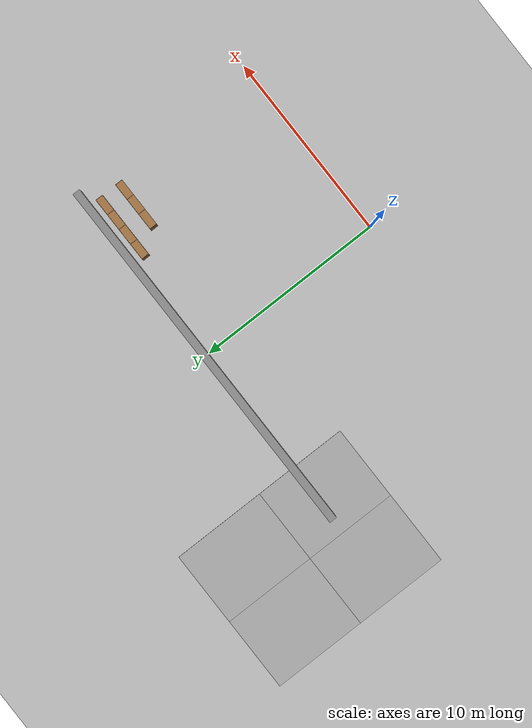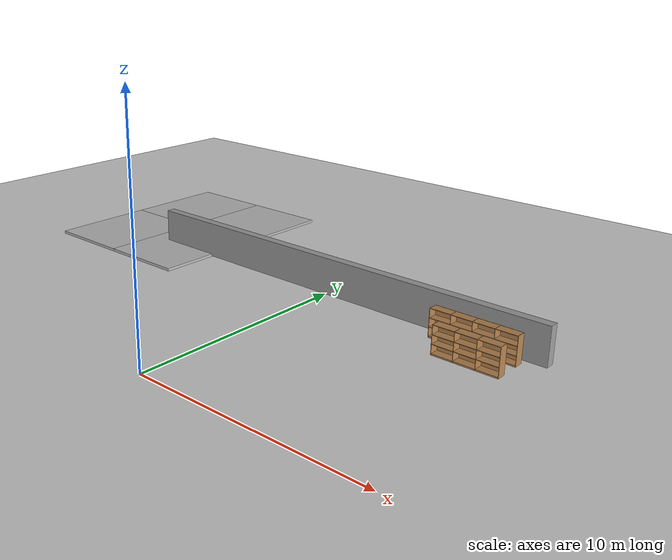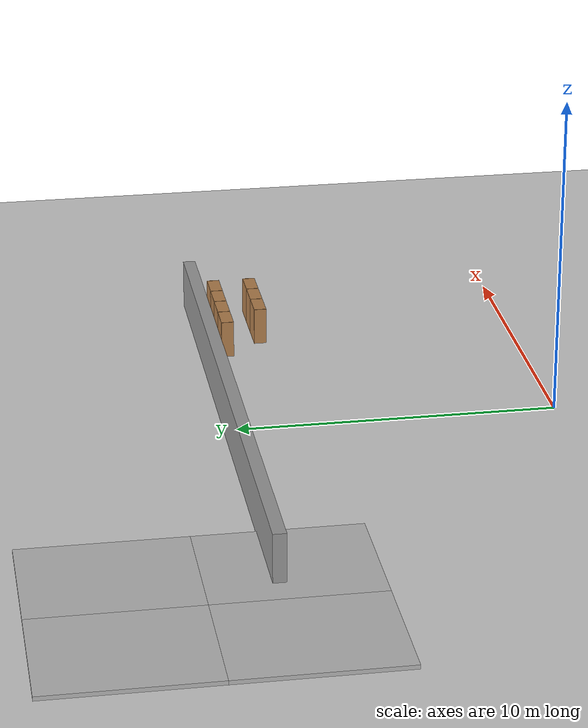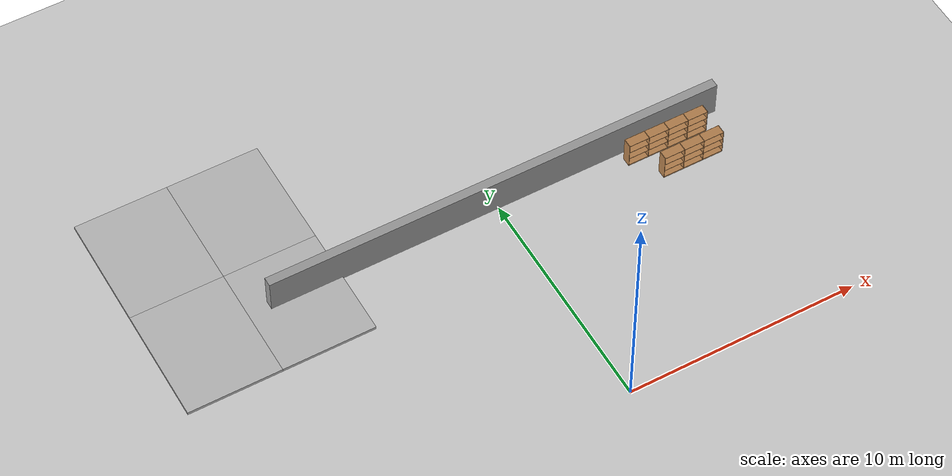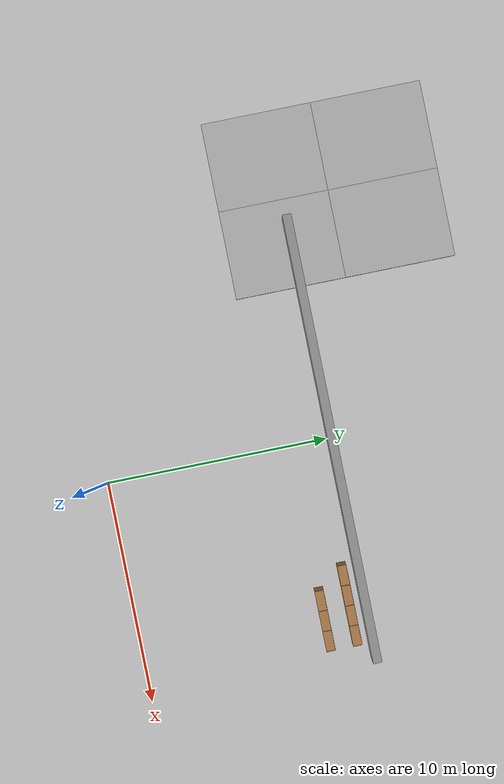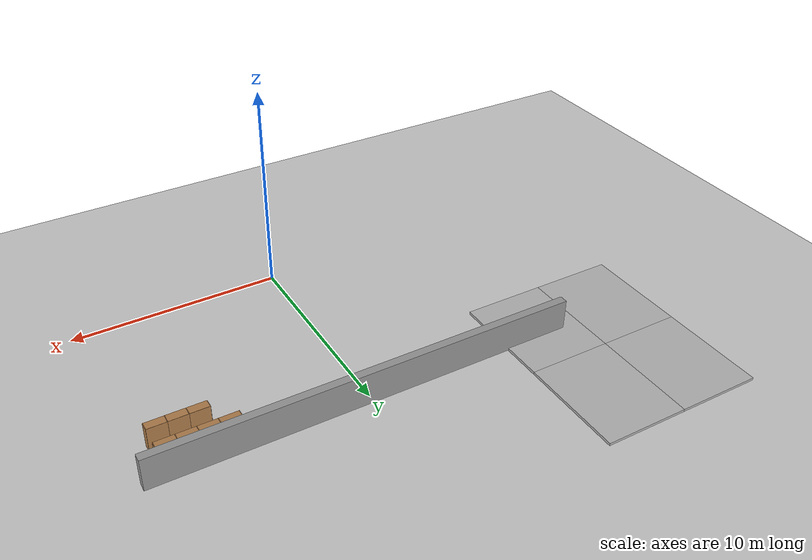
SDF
<sdf version="1.6">
 <world name="default">
  <model name="ground_plane">
   <static>1</static>
   <link name="link">
    <collision name="collision">
     <geometry><plane><normal>0 0 1</normal><size>100 100</size></plane></geometry>
     <surface><friction><ode><mu>100</mu><mu2>50</mu2></ode></friction></surface>
    </collision>
    <visual name="visual">
     <cast_shadows>0</cast_shadows>
     <geometry><plane><normal>0 0 1</normal><size>100 100</size></plane></geometry>
     <material>
      <script><uri>file://media/materials/scripts/gazebo.material</uri><name>Gazebo/Grey</name></script>
     </material>
    </visual>
   </link>
  </model>
  <model name="grey_wall_20">
   <link name="north_wall">
    <inertial>
     <mass>10</mass>
     <inertia><ixx>1</ixx><ixy>0</ixy><ixz>0</ixz><iyy>1</iyy><iyz>0</iyz><izz>1</izz></inertia>
    </inertial>
    <visual name="visual">
     <cast_shadows>0</cast_shadows>
     <geometry><box><size>20 0.4 1.6</size></box></geometry>
     <material>
      <script>
       <uri>model://grey_wall/materials/scripts</uri>
       <uri>model://grey_wall/materials/textures</uri>
       <name>vrc/grey_wall</name>
      </script>
      <ambient>1 1 1 1</ambient>
      <diffuse>1 1 1 1</diffuse>
      <specular>0 0 0 1</specular>
      <emissive>0 0 0 1</emissive>
      <shader type="vertex"><normal_map>__default__</normal_map></shader>
     </material>
    </visual>
    <collision name="collision">
     <geometry><box><size>20 0.4 1.6</size></box></geometry>
     <surface>
      <friction>
       <ode><mu>1</mu><mu2>1</mu2><fdir1>0 0 0</fdir1><slip1>0</slip1><slip2>0</slip2></ode>
       <torsional>
        <coefficient>1</coefficient>
        <patch_radius>0</patch_radius>
        <surface_radius>0</surface_radius>
        <use_patch_radius>1</use_patch_radius>
        <ode><slip>0</slip></ode>
       </torsional>
      </friction>
      <bounce><restitution_coefficient>0</restitution_coefficient><threshold>1e+06</threshold></bounce>
      <contact>
       <collide_without_contact>0</collide_without_contact>
       <collide_without_contact_bitmask>1</collide_without_contact_bitmask>
       <collide_bitmask>1</collide_bitmask>
       <ode>
        <soft_cfm>0</soft_cfm>
        <soft_erp>0.2</soft_erp>
        <kp>1e+13</kp>
        <kd>1</kd>
        <max_vel>0.01</max_vel>
        <min_depth>0</min_depth>
       </ode>
       <bullet>
        <split_impulse>1</split_impulse>
        <split_impulse_penetration_threshold>-0.01</split_impulse_penetration_threshold>
        <soft_cfm>0</soft_cfm>
        <soft_erp>0.2</soft_erp>
        <kp>1e+13</kp>
        <kd>1</kd>
       </bullet>
      </contact>
     </surface>
    </collision>
   </link>
   <static>1</static>
   <pose>0 10.2 0.8 0 -0 0</pose>
  </model>
  <model name="bookshelf">
   <static>1</static>
   <link name="link">
    <inertial><mass>1</mass></inertial>
    <collision name="back">
     <pose>0 0.005 0.6 0 -0 0</pose>
     <geometry><box><size>0.9 0.01 1.2</size></box></geometry>
    </collision>
    <visual name="visual1">
     <pose>0 0.005 0.6 0 -0 0</pose>
     <geometry><box><size>0.9 0.01 1.2</size></box></geometry>
     <material>
      <script><uri>file://media/materials/scripts/gazebo.material</uri><name>Gazebo/Wood</name></script>
     </material>
    </visual>
    <collision name="left_side">
     <pose>0.45 -0.195 0.6 0 -0 0</pose>
     <geometry><box><size>0.02 0.4 1.2</size></box></geometry>
    </collision>
    <visual name="visual2">
     <pose>0.45 -0.195 0.6 0 -0 0</pose>
     <geometry><box><size>0.02 0.4 1.2</size></box></geometry>
     <material>
      <script><uri>file://media/materials/scripts/gazebo.material</uri><name>Gazebo/Wood</name></script>
     </material>
    </visual>
    <collision name="right_side">
     <pose>-0.45 -0.195 0.6 0 -0 0</pose>
     <geometry><box><size>0.02 0.4 1.2</size></box></geometry>
    </collision>
    <visual name="visual3">
     <pose>-0.45 -0.195 0.6 0 -0 0</pose>
     <geometry><box><size>0.02 0.4 1.2</size></box></geometry>
     <material>
      <script><uri>file://media/materials/scripts/gazebo.material</uri><name>Gazebo/Wood</name></script>
     </material>
    </visual>
    <collision name="bottom">
     <pose>0 -0.195 0.03 0 -0 0</pose>
     <geometry><box><size>0.88 0.4 0.06</size></box></geometry>
    </collision>
    <visual name="visual4">
     <pose>0 -0.195 0.03 0 -0 0</pose>
     <geometry><box><size>0.88 0.4 0.06</size></box></geometry>
     <material>
      <script><uri>file://media/materials/scripts/gazebo.material</uri><name>Gazebo/Wood</name></script>
     </material>
    </visual>
    <collision name="top">
     <pose>0 -0.195 1.19 0 -0 0</pose>
     <geometry><box><size>0.88 0.4 0.02</size></box></geometry>
    </collision>
    <visual name="visual5">
     <pose>0 -0.195 1.19 0 -0 0</pose>
     <geometry><box><size>0.88 0.4 0.02</size></box></geometry>
     <material>
      <script><uri>file://media/materials/scripts/gazebo.material</uri><name>Gazebo/Wood</name></script>
     </material>
    </visual>
    <collision name="low_shelf">
     <pose>0 -0.195 0.43 0 -0 0</pose>
     <geometry><box><size>0.88 0.4 0.02</size></box></geometry>
    </collision>
    <visual name="visual6">
     <pose>0 -0.195 0.43 0 -0 0</pose>
     <geometry><box><size>0.88 0.4 0.02</size></box></geometry>
     <material>
      <script><uri>file://media/materials/scripts/gazebo.material</uri><name>Gazebo/Wood</name></script>
     </material>
    </visual>
    <collision name="high_shelf">
     <pose>0 -0.195 0.8 0 -0 0</pose>
     <geometry><box><size>0.88 0.4 0.02</size></box></geometry>
    </collision>
    <visual name="visual7">
     <pose>0 -0.195 0.8 0 -0 0</pose>
     <geometry><box><size>0.88 0.4 0.02</size></box></geometry>
     <material>
      <script><uri>file://media/materials/scripts/gazebo.material</uri><name>Gazebo/Wood</name></script>
     </material>
    </visual>
   </link>
   <pose>6 9.7 0 0 -0 0</pose>
  </model>
  <model name="bookshelf_0">
   <static>1</static>
   <link name="link">
    <inertial><mass>1</mass></inertial>
    <collision name="back">
     <pose>0 0.005 0.6 0 -0 0</pose>
     <geometry><box><size>0.9 0.01 1.2</size></box></geometry>
    </collision>
    <visual name="visual1">
     <pose>0 0.005 0.6 0 -0 0</pose>
     <geometry><box><size>0.9 0.01 1.2</size></box></geometry>
     <material>
      <script><uri>file://media/materials/scripts/gazebo.material</uri><name>Gazebo/Wood</name></script>
     </material>
    </visual>
    <collision name="left_side">
     <pose>0.45 -0.195 0.6 0 -0 0</pose>
     <geometry><box><size>0.02 0.4 1.2</size></box></geometry>
    </collision>
    <visual name="visual2">
     <pose>0.45 -0.195 0.6 0 -0 0</pose>
     <geometry><box><size>0.02 0.4 1.2</size></box></geometry>
     <material>
      <script><uri>file://media/materials/scripts/gazebo.material</uri><name>Gazebo/Wood</name></script>
     </material>
    </visual>
    <collision name="right_side">
     <pose>-0.45 -0.195 0.6 0 -0 0</pose>
     <geometry><box><size>0.02 0.4 1.2</size></box></geometry>
    </collision>
    <visual name="visual3">
     <pose>-0.45 -0.195 0.6 0 -0 0</pose>
     <geometry><box><size>0.02 0.4 1.2</size></box></geometry>
     <material>
      <script><uri>file://media/materials/scripts/gazebo.material</uri><name>Gazebo/Wood</name></script>
     </material>
    </visual>
    <collision name="bottom">
     <pose>0 -0.195 0.03 0 -0 0</pose>
     <geometry><box><size>0.88 0.4 0.06</size></box></geometry>
    </collision>
    <visual name="visual4">
     <pose>0 -0.195 0.03 0 -0 0</pose>
     <geometry><box><size>0.88 0.4 0.06</size></box></geometry>
     <material>
      <script><uri>file://media/materials/scripts/gazebo.material</uri><name>Gazebo/Wood</name></script>
     </material>
    </visual>
    <collision name="top">
     <pose>0 -0.195 1.19 0 -0 0</pose>
     <geometry><box><size>0.88 0.4 0.02</size></box></geometry>
    </collision>
    <visual name="visual5">
     <pose>0 -0.195 1.19 0 -0 0</pose>
     <geometry><box><size>0.88 0.4 0.02</size></box></geometry>
     <material>
      <script><uri>file://media/materials/scripts/gazebo.material</uri><name>Gazebo/Wood</name></script>
     </material>
    </visual>
    <collision name="low_shelf">
     <pose>0 -0.195 0.43 0 -0 0</pose>
     <geometry><box><size>0.88 0.4 0.02</size></box></geometry>
    </collision>
    <visual name="visual6">
     <pose>0 -0.195 0.43 0 -0 0</pose>
     <geometry><box><size>0.88 0.4 0.02</size></box></geometry>
     <material>
      <script><uri>file://media/materials/scripts/gazebo.material</uri><name>Gazebo/Wood</name></script>
     </material>
    </visual>
    <collision name="high_shelf">
     <pose>0 -0.195 0.8 0 -0 0</pose>
     <geometry><box><size>0.88 0.4 0.02</size></box></geometry>
    </collision>
    <visual name="visual7">
     <pose>0 -0.195 0.8 0 -0 0</pose>
     <geometry><box><size>0.88 0.4 0.02</size></box></geometry>
     <material>
      <script><uri>file://media/materials/scripts/gazebo.material</uri><name>Gazebo/Wood</name></script>
     </material>
    </visual>
   </link>
   <pose>6.9 9.7 0 0 -0 0</pose>
  </model>
  <model name="bookshelf_1">
   <static>1</static>
   <link name="link">
    <inertial><mass>1</mass></inertial>
    <collision name="back">
     <pose>0 0.005 0.6 0 -0 0</pose>
     <geometry><box><size>0.9 0.01 1.2</size></box></geometry>
    </collision>
    <visual name="visual1">
     <pose>0 0.005 0.6 0 -0 0</pose>
     <geometry><box><size>0.9 0.01 1.2</size></box></geometry>
     <material>
      <script><uri>file://media/materials/scripts/gazebo.material</uri><name>Gazebo/Wood</name></script>
     </material>
    </visual>
    <collision name="left_side">
     <pose>0.45 -0.195 0.6 0 -0 0</pose>
     <geometry><box><size>0.02 0.4 1.2</size></box></geometry>
    </collision>
    <visual name="visual2">
     <pose>0.45 -0.195 0.6 0 -0 0</pose>
     <geometry><box><size>0.02 0.4 1.2</size></box></geometry>
     <material>
      <script><uri>file://media/materials/scripts/gazebo.material</uri><name>Gazebo/Wood</name></script>
     </material>
    </visual>
    <collision name="right_side">
     <pose>-0.45 -0.195 0.6 0 -0 0</pose>
     <geometry><box><size>0.02 0.4 1.2</size></box></geometry>
    </collision>
    <visual name="visual3">
     <pose>-0.45 -0.195 0.6 0 -0 0</pose>
     <geometry><box><size>0.02 0.4 1.2</size></box></geometry>
     <material>
      <script><uri>file://media/materials/scripts/gazebo.material</uri><name>Gazebo/Wood</name></script>
     </material>
    </visual>
    <collision name="bottom">
     <pose>0 -0.195 0.03 0 -0 0</pose>
     <geometry><box><size>0.88 0.4 0.06</size></box></geometry>
    </collision>
    <visual name="visual4">
     <pose>0 -0.195 0.03 0 -0 0</pose>
     <geometry><box><size>0.88 0.4 0.06</size></box></geometry>
     <material>
      <script><uri>file://media/materials/scripts/gazebo.material</uri><name>Gazebo/Wood</name></script>
     </material>
    </visual>
    <collision name="top">
     <pose>0 -0.195 1.19 0 -0 0</pose>
     <geometry><box><size>0.88 0.4 0.02</size></box></geometry>
    </collision>
    <visual name="visual5">
     <pose>0 -0.195 1.19 0 -0 0</pose>
     <geometry><box><size>0.88 0.4 0.02</size></box></geometry>
     <material>
      <script><uri>file://media/materials/scripts/gazebo.material</uri><name>Gazebo/Wood</name></script>
     </material>
    </visual>
    <collision name="low_shelf">
     <pose>0 -0.195 0.43 0 -0 0</pose>
     <geometry><box><size>0.88 0.4 0.02</size></box></geometry>
    </collision>
    <visual name="visual6">
     <pose>0 -0.195 0.43 0 -0 0</pose>
     <geometry><box><size>0.88 0.4 0.02</size></box></geometry>
     <material>
      <script><uri>file://media/materials/scripts/gazebo.material</uri><name>Gazebo/Wood</name></script>
     </material>
    </visual>
    <collision name="high_shelf">
     <pose>0 -0.195 0.8 0 -0 0</pose>
     <geometry><box><size>0.88 0.4 0.02</size></box></geometry>
    </collision>
    <visual name="visual7">
     <pose>0 -0.195 0.8 0 -0 0</pose>
     <geometry><box><size>0.88 0.4 0.02</size></box></geometry>
     <material>
      <script><uri>file://media/materials/scripts/gazebo.material</uri><name>Gazebo/Wood</name></script>
     </material>
    </visual>
   </link>
   <pose>7.8 9.7 0 0 -0 0</pose>
  </model>
  <model name="bookshelf_2">
   <static>1</static>
   <link name="link">
    <inertial><mass>1</mass></inertial>
    <collision name="back">
     <pose>0 0.005 0.6 0 -0 0</pose>
     <geometry><box><size>0.9 0.01 1.2</size></box></geometry>
    </collision>
    <visual name="visual1">
     <pose>0 0.005 0.6 0 -0 0</pose>
     <geometry><box><size>0.9 0.01 1.2</size></box></geometry>
     <material>
      <script><uri>file://media/materials/scripts/gazebo.material</uri><name>Gazebo/Wood</name></script>
     </material>
    </visual>
    <collision name="left_side">
     <pose>0.45 -0.195 0.6 0 -0 0</pose>
     <geometry><box><size>0.02 0.4 1.2</size></box></geometry>
    </collision>
    <visual name="visual2">
     <pose>0.45 -0.195 0.6 0 -0 0</pose>
     <geometry><box><size>0.02 0.4 1.2</size></box></geometry>
     <material>
      <script><uri>file://media/materials/scripts/gazebo.material</uri><name>Gazebo/Wood</name></script>
     </material>
    </visual>
    <collision name="right_side">
     <pose>-0.45 -0.195 0.6 0 -0 0</pose>
     <geometry><box><size>0.02 0.4 1.2</size></box></geometry>
    </collision>
    <visual name="visual3">
     <pose>-0.45 -0.195 0.6 0 -0 0</pose>
     <geometry><box><size>0.02 0.4 1.2</size></box></geometry>
     <material>
      <script><uri>file://media/materials/scripts/gazebo.material</uri><name>Gazebo/Wood</name></script>
     </material>
    </visual>
    <collision name="bottom">
     <pose>0 -0.195 0.03 0 -0 0</pose>
     <geometry><box><size>0.88 0.4 0.06</size></box></geometry>
    </collision>
    <visual name="visual4">
     <pose>0 -0.195 0.03 0 -0 0</pose>
     <geometry><box><size>0.88 0.4 0.06</size></box></geometry>
     <material>
      <script><uri>file://media/materials/scripts/gazebo.material</uri><name>Gazebo/Wood</name></script>
     </material>
    </visual>
    <collision name="top">
     <pose>0 -0.195 1.19 0 -0 0</pose>
     <geometry><box><size>0.88 0.4 0.02</size></box></geometry>
    </collision>
    <visual name="visual5">
     <pose>0 -0.195 1.19 0 -0 0</pose>
     <geometry><box><size>0.88 0.4 0.02</size></box></geometry>
     <material>
      <script><uri>file://media/materials/scripts/gazebo.material</uri><name>Gazebo/Wood</name></script>
     </material>
    </visual>
    <collision name="low_shelf">
     <pose>0 -0.195 0.43 0 -0 0</pose>
     <geometry><box><size>0.88 0.4 0.02</size></box></geometry>
    </collision>
    <visual name="visual6">
     <pose>0 -0.195 0.43 0 -0 0</pose>
     <geometry><box><size>0.88 0.4 0.02</size></box></geometry>
     <material>
      <script><uri>file://media/materials/scripts/gazebo.material</uri><name>Gazebo/Wood</name></script>
     </material>
    </visual>
    <collision name="high_shelf">
     <pose>0 -0.195 0.8 0 -0 0</pose>
     <geometry><box><size>0.88 0.4 0.02</size></box></geometry>
    </collision>
    <visual name="visual7">
     <pose>0 -0.195 0.8 0 -0 0</pose>
     <geometry><box><size>0.88 0.4 0.02</size></box></geometry>
     <material>
      <script><uri>file://media/materials/scripts/gazebo.material</uri><name>Gazebo/Wood</name></script>
     </material>
    </visual>
   </link>
   <pose>8.7 9.7 0 0 -0 0</pose>
  </model>
  <model name="bookshelf_4">
   <static>1</static>
   <link name="link">
    <inertial><mass>1</mass></inertial>
    <collision name="back">
     <pose>0 0.005 0.6 0 -0 0</pose>
     <geometry><box><size>0.9 0.01 1.2</size></box></geometry>
    </collision>
    <visual name="visual1">
     <pose>0 0.005 0.6 0 -0 0</pose>
     <geometry><box><size>0.9 0.01 1.2</size></box></geometry>
     <material>
      <script><uri>file://media/materials/scripts/gazebo.material</uri><name>Gazebo/Wood</name></script>
     </material>
    </visual>
    <collision name="left_side">
     <pose>0.45 -0.195 0.6 0 -0 0</pose>
     <geometry><box><size>0.02 0.4 1.2</size></box></geometry>
    </collision>
    <visual name="visual2">
     <pose>0.45 -0.195 0.6 0 -0 0</pose>
     <geometry><box><size>0.02 0.4 1.2</size></box></geometry>
     <material>
      <script><uri>file://media/materials/scripts/gazebo.material</uri><name>Gazebo/Wood</name></script>
     </material>
    </visual>
    <collision name="right_side">
     <pose>-0.45 -0.195 0.6 0 -0 0</pose>
     <geometry><box><size>0.02 0.4 1.2</size></box></geometry>
    </collision>
    <visual name="visual3">
     <pose>-0.45 -0.195 0.6 0 -0 0</pose>
     <geometry><box><size>0.02 0.4 1.2</size></box></geometry>
     <material>
      <script><uri>file://media/materials/scripts/gazebo.material</uri><name>Gazebo/Wood</name></script>
     </material>
    </visual>
    <collision name="bottom">
     <pose>0 -0.195 0.03 0 -0 0</pose>
     <geometry><box><size>0.88 0.4 0.06</size></box></geometry>
    </collision>
    <visual name="visual4">
     <pose>0 -0.195 0.03 0 -0 0</pose>
     <geometry><box><size>0.88 0.4 0.06</size></box></geometry>
     <material>
      <script><uri>file://media/materials/scripts/gazebo.material</uri><name>Gazebo/Wood</name></script>
     </material>
    </visual>
    <collision name="top">
     <pose>0 -0.195 1.19 0 -0 0</pose>
     <geometry><box><size>0.88 0.4 0.02</size></box></geometry>
    </collision>
    <visual name="visual5">
     <pose>0 -0.195 1.19 0 -0 0</pose>
     <geometry><box><size>0.88 0.4 0.02</size></box></geometry>
     <material>
      <script><uri>file://media/materials/scripts/gazebo.material</uri><name>Gazebo/Wood</name></script>
     </material>
    </visual>
    <collision name="low_shelf">
     <pose>0 -0.195 0.43 0 -0 0</pose>
     <geometry><box><size>0.88 0.4 0.02</size></box></geometry>
    </collision>
    <visual name="visual6">
     <pose>0 -0.195 0.43 0 -0 0</pose>
     <geometry><box><size>0.88 0.4 0.02</size></box></geometry>
     <material>
      <script><uri>file://media/materials/scripts/gazebo.material</uri><name>Gazebo/Wood</name></script>
     </material>
    </visual>
    <collision name="high_shelf">
     <pose>0 -0.195 0.8 0 -0 0</pose>
     <geometry><box><size>0.88 0.4 0.02</size></box></geometry>
    </collision>
    <visual name="visual7">
     <pose>0 -0.195 0.8 0 -0 0</pose>
     <geometry><box><size>0.88 0.4 0.02</size></box></geometry>
     <material>
      <script><uri>file://media/materials/scripts/gazebo.material</uri><name>Gazebo/Wood</name></script>
     </material>
    </visual>
   </link>
   <pose>6.9 8.5 0 0 -0 0</pose>
  </model>
  <model name="bookshelf_5">
   <static>1</static>
   <link name="link">
    <inertial><mass>1</mass></inertial>
    <collision name="back">
     <pose>0 0.005 0.6 0 -0 0</pose>
     <geometry><box><size>0.9 0.01 1.2</size></box></geometry>
    </collision>
    <visual name="visual1">
     <pose>0 0.005 0.6 0 -0 0</pose>
     <geometry><box><size>0.9 0.01 1.2</size></box></geometry>
     <material>
      <script><uri>file://media/materials/scripts/gazebo.material</uri><name>Gazebo/Wood</name></script>
     </material>
    </visual>
    <collision name="left_side">
     <pose>0.45 -0.195 0.6 0 -0 0</pose>
     <geometry><box><size>0.02 0.4 1.2</size></box></geometry>
    </collision>
    <visual name="visual2">
     <pose>0.45 -0.195 0.6 0 -0 0</pose>
     <geometry><box><size>0.02 0.4 1.2</size></box></geometry>
     <material>
      <script><uri>file://media/materials/scripts/gazebo.material</uri><name>Gazebo/Wood</name></script>
     </material>
    </visual>
    <collision name="right_side">
     <pose>-0.45 -0.195 0.6 0 -0 0</pose>
     <geometry><box><size>0.02 0.4 1.2</size></box></geometry>
    </collision>
    <visual name="visual3">
     <pose>-0.45 -0.195 0.6 0 -0 0</pose>
     <geometry><box><size>0.02 0.4 1.2</size></box></geometry>
     <material>
      <script><uri>file://media/materials/scripts/gazebo.material</uri><name>Gazebo/Wood</name></script>
     </material>
    </visual>
    <collision name="bottom">
     <pose>0 -0.195 0.03 0 -0 0</pose>
     <geometry><box><size>0.88 0.4 0.06</size></box></geometry>
    </collision>
    <visual name="visual4">
     <pose>0 -0.195 0.03 0 -0 0</pose>
     <geometry><box><size>0.88 0.4 0.06</size></box></geometry>
     <material>
      <script><uri>file://media/materials/scripts/gazebo.material</uri><name>Gazebo/Wood</name></script>
     </material>
    </visual>
    <collision name="top">
     <pose>0 -0.195 1.19 0 -0 0</pose>
     <geometry><box><size>0.88 0.4 0.02</size></box></geometry>
    </collision>
    <visual name="visual5">
     <pose>0 -0.195 1.19 0 -0 0</pose>
     <geometry><box><size>0.88 0.4 0.02</size></box></geometry>
     <material>
      <script><uri>file://media/materials/scripts/gazebo.material</uri><name>Gazebo/Wood</name></script>
     </material>
    </visual>
    <collision name="low_shelf">
     <pose>0 -0.195 0.43 0 -0 0</pose>
     <geometry><box><size>0.88 0.4 0.02</size></box></geometry>
    </collision>
    <visual name="visual6">
     <pose>0 -0.195 0.43 0 -0 0</pose>
     <geometry><box><size>0.88 0.4 0.02</size></box></geometry>
     <material>
      <script><uri>file://media/materials/scripts/gazebo.material</uri><name>Gazebo/Wood</name></script>
     </material>
    </visual>
    <collision name="high_shelf">
     <pose>0 -0.195 0.8 0 -0 0</pose>
     <geometry><box><size>0.88 0.4 0.02</size></box></geometry>
    </collision>
    <visual name="visual7">
     <pose>0 -0.195 0.8 0 -0 0</pose>
     <geometry><box><size>0.88 0.4 0.02</size></box></geometry>
     <material>
      <script><uri>file://media/materials/scripts/gazebo.material</uri><name>Gazebo/Wood</name></script>
     </material>
    </visual>
   </link>
   <pose>7.8 8.5 0 0 -0 0</pose>
  </model>
  <model name="bookshelf_6">
   <static>1</static>
   <link name="link">
    <inertial><mass>1</mass></inertial>
    <collision name="back">
     <pose>0 0.005 0.6 0 -0 0</pose>
     <geometry><box><size>0.9 0.01 1.2</size></box></geometry>
    </collision>
    <visual name="visual1">
     <pose>0 0.005 0.6 0 -0 0</pose>
     <geometry><box><size>0.9 0.01 1.2</size></box></geometry>
     <material>
      <script><uri>file://media/materials/scripts/gazebo.material</uri><name>Gazebo/Wood</name></script>
     </material>
    </visual>
    <collision name="left_side">
     <pose>0.45 -0.195 0.6 0 -0 0</pose>
     <geometry><box><size>0.02 0.4 1.2</size></box></geometry>
    </collision>
    <visual name="visual2">
     <pose>0.45 -0.195 0.6 0 -0 0</pose>
     <geometry><box><size>0.02 0.4 1.2</size></box></geometry>
     <material>
      <script><uri>file://media/materials/scripts/gazebo.material</uri><name>Gazebo/Wood</name></script>
     </material>
    </visual>
    <collision name="right_side">
     <pose>-0.45 -0.195 0.6 0 -0 0</pose>
     <geometry><box><size>0.02 0.4 1.2</size></box></geometry>
    </collision>
    <visual name="visual3">
     <pose>-0.45 -0.195 0.6 0 -0 0</pose>
     <geometry><box><size>0.02 0.4 1.2</size></box></geometry>
     <material>
      <script><uri>file://media/materials/scripts/gazebo.material</uri><name>Gazebo/Wood</name></script>
     </material>
    </visual>
    <collision name="bottom">
     <pose>0 -0.195 0.03 0 -0 0</pose>
     <geometry><box><size>0.88 0.4 0.06</size></box></geometry>
    </collision>
    <visual name="visual4">
     <pose>0 -0.195 0.03 0 -0 0</pose>
     <geometry><box><size>0.88 0.4 0.06</size></box></geometry>
     <material>
      <script><uri>file://media/materials/scripts/gazebo.material</uri><name>Gazebo/Wood</name></script>
     </material>
    </visual>
    <collision name="top">
     <pose>0 -0.195 1.19 0 -0 0</pose>
     <geometry><box><size>0.88 0.4 0.02</size></box></geometry>
    </collision>
    <visual name="visual5">
     <pose>0 -0.195 1.19 0 -0 0</pose>
     <geometry><box><size>0.88 0.4 0.02</size></box></geometry>
     <material>
      <script><uri>file://media/materials/scripts/gazebo.material</uri><name>Gazebo/Wood</name></script>
     </material>
    </visual>
    <collision name="low_shelf">
     <pose>0 -0.195 0.43 0 -0 0</pose>
     <geometry><box><size>0.88 0.4 0.02</size></box></geometry>
    </collision>
    <visual name="visual6">
     <pose>0 -0.195 0.43 0 -0 0</pose>
     <geometry><box><size>0.88 0.4 0.02</size></box></geometry>
     <material>
      <script><uri>file://media/materials/scripts/gazebo.material</uri><name>Gazebo/Wood</name></script>
     </material>
    </visual>
    <collision name="high_shelf">
     <pose>0 -0.195 0.8 0 -0 0</pose>
     <geometry><box><size>0.88 0.4 0.02</size></box></geometry>
    </collision>
    <visual name="visual7">
     <pose>0 -0.195 0.8 0 -0 0</pose>
     <geometry><box><size>0.88 0.4 0.02</size></box></geometry>
     <material>
      <script><uri>file://media/materials/scripts/gazebo.material</uri><name>Gazebo/Wood</name></script>
     </material>
    </visual>
   </link>
   <pose>8.7 8.5 0 0 -0 0</pose>
  </model>
  <model name="mud_box">
   <static>1</static>
   <link name="link">
    <collision name="collision"><geometry><box><size>8 10 0.2</size></box></geometry></collision>
    <visual name="visual_1">
     <pose>-2 2.5 0 0 -0 0</pose>
     <cast_shadows>0</cast_shadows>
     <geometry><box><size>4 5 0.2</size></box></geometry>
     <material>
      <script>
       <uri>model://mud_box/materials/scripts</uri>
       <uri>model://mud_box/materials/textures</uri>
       <name>vrc/mud</name>
      </script>
     </material>
    </visual>
    <visual name="visual_2">
     <pose>2 2.5 0 0 -0 0</pose>
     <cast_shadows>0</cast_shadows>
     <geometry><box><size>4 5 0.2</size></box></geometry>
     <material>
      <script>
       <uri>model://mud_box/materials/scripts</uri>
       <uri>model://mud_box/materials/textures</uri>
       <name>vrc/mud</name>
      </script>
     </material>
    </visual>
    <visual name="visual_3">
     <pose>2 -2.5 0 0 -0 0</pose>
     <cast_shadows>0</cast_shadows>
     <geometry><box><size>4 5 0.2</size></box></geometry>
     <material>
      <script>
       <uri>model://mud_box/materials/scripts</uri>
       <uri>model://mud_box/materials/textures</uri>
       <name>vrc/mud</name>
      </script>
     </material>
    </visual>
    <visual name="visual_4">
     <pose>-2 -2.5 0 0 -0 0</pose>
     <cast_shadows>0</cast_shadows>
     <geometry><box><size>4 5 0.2</size></box></geometry>
     <material>
      <script>
       <uri>model://mud_box/materials/scripts</uri>
       <uri>model://mud_box/materials/textures</uri>
       <name>vrc/mud</name>
      </script>
     </material>
    </visual>
   </link>
   <pose>-10.9136 12.2837 0 0 -0 0</pose>
  </model>
 </world>
</sdf>
